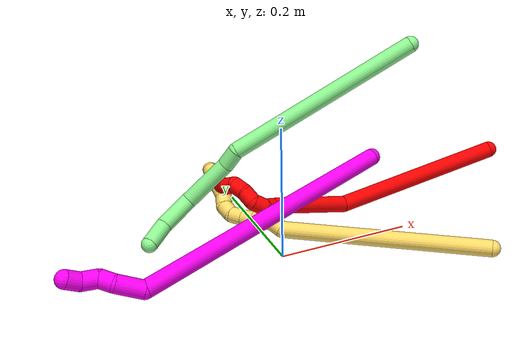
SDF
<sdf version="1.7">
 <world name="default">
  <model name="2">
   <static>0</static>
   <link name="2">
    <collision name="collision-cylinder-e_1_1_4">
     <pose>-0.026045 -0.007486 -0.121809 3.08021 -0.210261 -2.57535</pose>
     <geometry><cylinder><radius>0.0125</radius><length>0.249575</length></cylinder></geometry>
     <surface>
      <friction><ode><mu>1.16</mu><mu2>1.16</mu2><slip1>0</slip1><slip2>0</slip2></ode></friction>
      <contact><ode><kp>1e+06</kp><kd>1</kd><max_vel>0</max_vel><min_depth>0.001</min_depth></ode></contact>
     </surface>
    </collision>
    <visual name="visual-cylinder-e_1_1_4">
     <pose>-0.026045 -0.007486 -0.121809 3.08021 -0.210261 -2.57535</pose>
     <geometry><cylinder><radius>0.0125</radius><length>0.249575</length></cylinder></geometry>
     <material><ambient>1 0 0 1</ambient></material>
    </visual>
    <collision name="collision-cylinder-e_2_4_5">
     <pose>-0.085005 -0.037875 -0.280285 2.58327 -0.650732 -1.73296</pose>
     <geometry><cylinder><radius>0.0125</radius><length>0.108671</length></cylinder></geometry>
     <surface>
      <friction><ode><mu>1.16</mu><mu2>1.16</mu2><slip1>0</slip1><slip2>0</slip2></ode></friction>
      <contact><ode><kp>1e+06</kp><kd>1</kd><max_vel>0</max_vel><min_depth>0.001</min_depth></ode></contact>
     </surface>
    </collision>
    <visual name="visual-cylinder-e_2_4_5">
     <pose>-0.085005 -0.037875 -0.280285 2.58327 -0.650732 -1.73296</pose>
     <geometry><cylinder><radius>0.0125</radius><length>0.108671</length></cylinder></geometry>
     <material><ambient>1 0 0 1</ambient></material>
    </visual>
    <collision name="collision-cylinder-e_3_5_6">
     <pose>-0.123359 -0.062564 -0.325711 2.94032 -0.54662 -2.45011</pose>
     <geometry><cylinder><radius>0.0125</radius><length>0.020929</length></cylinder></geometry>
     <surface>
      <friction><ode><mu>1.16</mu><mu2>1.16</mu2><slip1>0</slip1><slip2>0</slip2></ode></friction>
      <contact><ode><kp>1e+06</kp><kd>1</kd><max_vel>0</max_vel><min_depth>0.001</min_depth></ode></contact>
     </surface>
    </collision>
    <visual name="visual-cylinder-e_3_5_6">
     <pose>-0.123359 -0.062564 -0.325711 2.94032 -0.54662 -2.45011</pose>
     <geometry><cylinder><radius>0.0125</radius><length>0.020929</length></cylinder></geometry>
     <material><ambient>1 0 0 1</ambient></material>
    </visual>
    <collision name="collision-cylinder-e_4_6_7">
     <pose>-0.134251 -0.071462 -0.339199 2.15768 -0.568302 -0.997955</pose>
     <geometry><cylinder><radius>0.0125</radius><length>0.020263</length></cylinder></geometry>
     <surface>
      <friction><ode><mu>1.16</mu><mu2>1.16</mu2><slip1>0</slip1><slip2>0</slip2></ode></friction>
      <contact><ode><kp>1e+06</kp><kd>1</kd><max_vel>0</max_vel><min_depth>0.001</min_depth></ode></contact>
     </surface>
    </collision>
    <visual name="visual-cylinder-e_4_6_7">
     <pose>-0.134251 -0.071462 -0.339199 2.15768 -0.568302 -0.997955</pose>
     <geometry><cylinder><radius>0.0125</radius><length>0.020263</length></cylinder></geometry>
     <material><ambient>1 0 0 1</ambient></material>
    </visual>
    <collision name="collision-cylinder-e_5_7_8">
     <pose>-0.148343 -0.079646 -0.349035 2.93428 -1.02732 -2.7769</pose>
     <geometry><cylinder><radius>0.0125</radius><length>0.020185</length></cylinder></geometry>
     <surface>
      <friction><ode><mu>1.16</mu><mu2>1.16</mu2><slip1>0</slip1><slip2>0</slip2></ode></friction>
      <contact><ode><kp>1e+06</kp><kd>1</kd><max_vel>0</max_vel><min_depth>0.001</min_depth></ode></contact>
     </surface>
    </collision>
    <visual name="visual-cylinder-e_5_7_8">
     <pose>-0.148343 -0.079646 -0.349035 2.93428 -1.02732 -2.7769</pose>
     <geometry><cylinder><radius>0.0125</radius><length>0.020185</length></cylinder></geometry>
     <material><ambient>1 0 0 1</ambient></material>
    </visual>
    <collision name="collision-cylinder-e_6_8_9">
     <pose>-0.165323 -0.075345 -0.356228 -1.94095 -0.965999 1.30736</pose>
     <geometry><cylinder><radius>0.0125</radius><length>0.020282</length></cylinder></geometry>
     <surface>
      <friction><ode><mu>1.16</mu><mu2>1.16</mu2><slip1>0</slip1><slip2>0</slip2></ode></friction>
      <contact><ode><kp>1e+06</kp><kd>1</kd><max_vel>0</max_vel><min_depth>0.001</min_depth></ode></contact>
     </surface>
    </collision>
    <visual name="visual-cylinder-e_6_8_9">
     <pose>-0.165323 -0.075345 -0.356228 -1.94095 -0.965999 1.30736</pose>
     <geometry><cylinder><radius>0.0125</radius><length>0.020282</length></cylinder></geometry>
     <material><ambient>1 0 0 1</ambient></material>
    </visual>
    <collision name="collision-cylinder-e_7_9_10">
     <pose>-0.179929 -0.063303 -0.3624 -2.12069 -0.675441 1.12029</pose>
     <geometry><cylinder><radius>0.0125</radius><length>0.020036</length></cylinder></geometry>
     <surface>
      <friction><ode><mu>1.16</mu><mu2>1.16</mu2><slip1>0</slip1><slip2>0</slip2></ode></friction>
      <contact><ode><kp>1e+06</kp><kd>1</kd><max_vel>0</max_vel><min_depth>0.001</min_depth></ode></contact>
     </surface>
    </collision>
    <visual name="visual-cylinder-e_7_9_10">
     <pose>-0.179929 -0.063303 -0.3624 -2.12069 -0.675441 1.12029</pose>
     <geometry><cylinder><radius>0.0125</radius><length>0.020036</length></cylinder></geometry>
     <material><ambient>1 0 0 1</ambient></material>
    </visual>
    <collision name="collision-cylinder-e_8_10_11">
     <pose>-0.186478 -0.049674 -0.373688 -2.37307 -0.028467 0.070377</pose>
     <geometry><cylinder><radius>0.0125</radius><length>0.020044</length></cylinder></geometry>
     <surface>
      <friction><ode><mu>1.16</mu><mu2>1.16</mu2><slip1>0</slip1><slip2>0</slip2></ode></friction>
      <contact><ode><kp>1e+06</kp><kd>1</kd><max_vel>0</max_vel><min_depth>0.001</min_depth></ode></contact>
     </surface>
    </collision>
    <visual name="visual-cylinder-e_8_10_11">
     <pose>-0.186478 -0.049674 -0.373688 -2.37307 -0.028467 0.070377</pose>
     <geometry><cylinder><radius>0.0125</radius><length>0.020044</length></cylinder></geometry>
     <material><ambient>1 0 0 1</ambient></material>
    </visual>
    <collision name="collision-cylinder-e_9_11_2">
     <pose>-0.185936 -0.033224 -0.383967 -1.8844 0.082737 -0.113752</pose>
     <geometry><cylinder><radius>0.0125</radius><length>0.020015</length></cylinder></geometry>
     <surface>
      <friction><ode><mu>1.16</mu><mu2>1.16</mu2><slip1>0</slip1><slip2>0</slip2></ode></friction>
      <contact><ode><kp>1e+06</kp><kd>1</kd><max_vel>0</max_vel><min_depth>0.001</min_depth></ode></contact>
     </surface>
    </collision>
    <visual name="visual-cylinder-e_9_11_2">
     <pose>-0.185936 -0.033224 -0.383967 -1.8844 0.082737 -0.113752</pose>
     <geometry><cylinder><radius>0.0125</radius><length>0.020015</length></cylinder></geometry>
     <material><ambient>1 0 0 1</ambient></material>
    </visual>
    <collision name="collision-sphere-2">
     <pose>-0.185109 -0.023738 -0.387044 0 -0 0</pose>
     <geometry><sphere><radius>0.0125</radius></sphere></geometry>
     <surface>
      <friction><ode><mu>1.16</mu><mu2>1.16</mu2><slip1>0</slip1><slip2>0</slip2></ode></friction>
      <contact><ode><kp>1e+06</kp><kd>1</kd><max_vel>0</max_vel><min_depth>0.001</min_depth></ode></contact>
     </surface>
    </collision>
    <visual name="visual-sphere-2">
     <pose>-0.185109 -0.023738 -0.387044 0 -0 0</pose>
     <geometry><sphere><radius>0.0125</radius></sphere></geometry>
     <material><ambient>1 0 0 1</ambient></material>
    </visual>
    <collision name="collision-sphere-11">
     <pose>-0.186763 -0.042711 -0.380891 0 -0 0</pose>
     <geometry><sphere><radius>0.0125</radius></sphere></geometry>
     <surface>
      <friction><ode><mu>1.16</mu><mu2>1.16</mu2><slip1>0</slip1><slip2>0</slip2></ode></friction>
      <contact><ode><kp>1e+06</kp><kd>1</kd><max_vel>0</max_vel><min_depth>0.001</min_depth></ode></contact>
     </surface>
    </collision>
    <visual name="visual-sphere-11">
     <pose>-0.186763 -0.042711 -0.380891 0 -0 0</pose>
     <geometry><sphere><radius>0.0125</radius></sphere></geometry>
     <material><ambient>1 0 0 1</ambient></material>
    </visual>
    <collision name="collision-sphere-10">
     <pose>-0.186193 -0.056638 -0.366486 0 -0 0</pose>
     <geometry><sphere><radius>0.0125</radius></sphere></geometry>
     <surface>
      <friction><ode><mu>1.16</mu><mu2>1.16</mu2><slip1>0</slip1><slip2>0</slip2></ode></friction>
      <contact><ode><kp>1e+06</kp><kd>1</kd><max_vel>0</max_vel><min_depth>0.001</min_depth></ode></contact>
     </surface>
    </collision>
    <visual name="visual-sphere-10">
     <pose>-0.186193 -0.056638 -0.366486 0 -0 0</pose>
     <geometry><sphere><radius>0.0125</radius></sphere></geometry>
     <material><ambient>1 0 0 1</ambient></material>
    </visual>
    <collision name="collision-sphere-9">
     <pose>-0.173666 -0.069969 -0.358314 0 -0 0</pose>
     <geometry><sphere><radius>0.0125</radius></sphere></geometry>
     <surface>
      <friction><ode><mu>1.16</mu><mu2>1.16</mu2><slip1>0</slip1><slip2>0</slip2></ode></friction>
      <contact><ode><kp>1e+06</kp><kd>1</kd><max_vel>0</max_vel><min_depth>0.001</min_depth></ode></contact>
     </surface>
    </collision>
    <visual name="visual-sphere-9">
     <pose>-0.173666 -0.069969 -0.358314 0 -0 0</pose>
     <geometry><sphere><radius>0.0125</radius></sphere></geometry>
     <material><ambient>1 0 0 1</ambient></material>
    </visual>
    <collision name="collision-sphere-4">
     <pose>-0.05209 -0.014972 -0.243619 0 -0 0</pose>
     <geometry><sphere><radius>0.0125</radius></sphere></geometry>
     <surface>
      <friction><ode><mu>1.16</mu><mu2>1.16</mu2><slip1>0</slip1><slip2>0</slip2></ode></friction>
      <contact><ode><kp>1e+06</kp><kd>1</kd><max_vel>0</max_vel><min_depth>0.001</min_depth></ode></contact>
     </surface>
    </collision>
    <visual name="visual-sphere-4">
     <pose>-0.05209 -0.014972 -0.243619 0 -0 0</pose>
     <geometry><sphere><radius>0.0125</radius></sphere></geometry>
     <material><ambient>1 0 0 1</ambient></material>
    </visual>
    <collision name="collision-sphere-1">
     <geometry><sphere><radius>0.0125</radius></sphere></geometry>
     <surface>
      <friction><ode><mu>1.16</mu><mu2>1.16</mu2><slip1>0</slip1><slip2>0</slip2></ode></friction>
      <contact><ode><kp>1e+06</kp><kd>1</kd><max_vel>0</max_vel><min_depth>0.001</min_depth></ode></contact>
     </surface>
    </collision>
    <visual name="visual-sphere-1">
     <geometry><sphere><radius>0.0125</radius></sphere></geometry>
     <material><ambient>1 0 0 1</ambient></material>
    </visual>
    <collision name="collision-sphere-8">
     <pose>-0.156981 -0.08072 -0.354142 0 -0 0</pose>
     <geometry><sphere><radius>0.0125</radius></sphere></geometry>
     <surface>
      <friction><ode><mu>1.16</mu><mu2>1.16</mu2><slip1>0</slip1><slip2>0</slip2></ode></friction>
      <contact><ode><kp>1e+06</kp><kd>1</kd><max_vel>0</max_vel><min_depth>0.001</min_depth></ode></contact>
     </surface>
    </collision>
    <visual name="visual-sphere-8">
     <pose>-0.156981 -0.08072 -0.354142 0 -0 0</pose>
     <geometry><sphere><radius>0.0125</radius></sphere></geometry>
     <material><ambient>1 0 0 1</ambient></material>
    </visual>
    <collision name="collision-sphere-5">
     <pose>-0.11792 -0.060777 -0.316952 0 -0 0</pose>
     <geometry><sphere><radius>0.0125</radius></sphere></geometry>
     <surface>
      <friction><ode><mu>1.16</mu><mu2>1.16</mu2><slip1>0</slip1><slip2>0</slip2></ode></friction>
      <contact><ode><kp>1e+06</kp><kd>1</kd><max_vel>0</max_vel><min_depth>0.001</min_depth></ode></contact>
     </surface>
    </collision>
    <visual name="visual-sphere-5">
     <pose>-0.11792 -0.060777 -0.316952 0 -0 0</pose>
     <geometry><sphere><radius>0.0125</radius></sphere></geometry>
     <material><ambient>1 0 0 1</ambient></material>
    </visual>
    <collision name="collision-sphere-6">
     <pose>-0.128798 -0.064351 -0.33447 0 -0 0</pose>
     <geometry><sphere><radius>0.0125</radius></sphere></geometry>
     <surface>
      <friction><ode><mu>1.16</mu><mu2>1.16</mu2><slip1>0</slip1><slip2>0</slip2></ode></friction>
      <contact><ode><kp>1e+06</kp><kd>1</kd><max_vel>0</max_vel><min_depth>0.001</min_depth></ode></contact>
     </surface>
    </collision>
    <visual name="visual-sphere-6">
     <pose>-0.128798 -0.064351 -0.33447 0 -0 0</pose>
     <geometry><sphere><radius>0.0125</radius></sphere></geometry>
     <material><ambient>1 0 0 1</ambient></material>
    </visual>
    <collision name="collision-sphere-7">
     <pose>-0.139704 -0.078572 -0.343928 0 -0 0</pose>
     <geometry><sphere><radius>0.0125</radius></sphere></geometry>
     <surface>
      <friction><ode><mu>1.16</mu><mu2>1.16</mu2><slip1>0</slip1><slip2>0</slip2></ode></friction>
      <contact><ode><kp>1e+06</kp><kd>1</kd><max_vel>0</max_vel><min_depth>0.001</min_depth></ode></contact>
     </surface>
    </collision>
    <visual name="visual-sphere-7">
     <pose>-0.139704 -0.078572 -0.343928 0 -0 0</pose>
     <geometry><sphere><radius>0.0125</radius></sphere></geometry>
     <material><ambient>1 0 0 1</ambient></material>
    </visual>
    <inertial>
     <pose>-0.076903 -0.029613 -0.222512 0 -0 0</pose>
     <mass>0.5</mass>
     <inertia>
      <ixx>-0.001876</ixx>
      <ixy>0</ixy>
      <ixz>0</ixz>
      <iyy>0.000387</iyy>
      <iyz>0</iyz>
      <izz>0.000437</izz>
     </inertia>
    </inertial>
   </link>
   <pose>0.377687 0.034462 0.079609 -0.258411 1.05871 -0.529895</pose>
  </model>
  <model name="5">
   <static>0</static>
   <link name="5">
    <collision name="collision-cylinder-e_1_1_4">
     <pose>-0.016455 0.01173 0.152508 -0.076764 -0.107166 0.004119</pose>
     <geometry><cylinder><radius>0.0125</radius><length>0.307683</length></cylinder></geometry>
     <surface>
      <friction><ode><mu>1.16</mu><mu2>1.16</mu2><slip1>0</slip1><slip2>0</slip2></ode></friction>
      <contact><ode><kp>1e+06</kp><kd>1</kd><max_vel>0</max_vel><min_depth>0.001</min_depth></ode></contact>
     </surface>
    </collision>
    <visual name="visual-cylinder-e_1_1_4">
     <pose>-0.016455 0.01173 0.152508 -0.076764 -0.107166 0.004119</pose>
     <geometry><cylinder><radius>0.0125</radius><length>0.307683</length></cylinder></geometry>
     <material><ambient>1 0.858824 0.4 1</ambient></material>
    </visual>
    <collision name="collision-cylinder-e_2_4_5">
     <pose>-0.036076 0.019205 0.313904 0.446521 -0.310874 -0.071127</pose>
     <geometry><cylinder><radius>0.0125</radius><length>0.020699</length></cylinder></geometry>
     <surface>
      <friction><ode><mu>1.16</mu><mu2>1.16</mu2><slip1>0</slip1><slip2>0</slip2></ode></friction>
      <contact><ode><kp>1e+06</kp><kd>1</kd><max_vel>0</max_vel><min_depth>0.001</min_depth></ode></contact>
     </surface>
    </collision>
    <visual name="visual-cylinder-e_2_4_5">
     <pose>-0.036076 0.019205 0.313904 0.446521 -0.310874 -0.071127</pose>
     <geometry><cylinder><radius>0.0125</radius><length>0.020699</length></cylinder></geometry>
     <material><ambient>1 0.858824 0.4 1</ambient></material>
    </visual>
    <collision name="collision-cylinder-e_3_5_6">
     <pose>-0.037528 0.012073 0.337778 0.189706 0.111861 0.010653</pose>
     <geometry><cylinder><radius>0.0125</radius><length>0.030713</length></cylinder></geometry>
     <surface>
      <friction><ode><mu>1.16</mu><mu2>1.16</mu2><slip1>0</slip1><slip2>0</slip2></ode></friction>
      <contact><ode><kp>1e+06</kp><kd>1</kd><max_vel>0</max_vel><min_depth>0.001</min_depth></ode></contact>
     </surface>
    </collision>
    <visual name="visual-cylinder-e_3_5_6">
     <pose>-0.037528 0.012073 0.337778 0.189706 0.111861 0.010653</pose>
     <geometry><cylinder><radius>0.0125</radius><length>0.030713</length></cylinder></geometry>
     <material><ambient>1 0.858824 0.4 1</ambient></material>
    </visual>
    <collision name="collision-cylinder-e_4_6_7">
     <pose>-0.034933 0.007065 0.362848 0.208146 0.08523 0.008908</pose>
     <geometry><cylinder><radius>0.0125</radius><length>0.020686</length></cylinder></geometry>
     <surface>
      <friction><ode><mu>1.16</mu><mu2>1.16</mu2><slip1>0</slip1><slip2>0</slip2></ode></friction>
      <contact><ode><kp>1e+06</kp><kd>1</kd><max_vel>0</max_vel><min_depth>0.001</min_depth></ode></contact>
     </surface>
    </collision>
    <visual name="visual-cylinder-e_4_6_7">
     <pose>-0.034933 0.007065 0.362848 0.208146 0.08523 0.008908</pose>
     <geometry><cylinder><radius>0.0125</radius><length>0.020686</length></cylinder></geometry>
     <material><ambient>1 0.858824 0.4 1</ambient></material>
    </visual>
    <collision name="collision-cylinder-e_5_7_8">
     <pose>-0.035131 0.003168 0.382817 0.176962 -0.106947 -0.009497</pose>
     <geometry><cylinder><radius>0.0125</radius><length>0.020202</length></cylinder></geometry>
     <surface>
      <friction><ode><mu>1.16</mu><mu2>1.16</mu2><slip1>0</slip1><slip2>0</slip2></ode></friction>
      <contact><ode><kp>1e+06</kp><kd>1</kd><max_vel>0</max_vel><min_depth>0.001</min_depth></ode></contact>
     </surface>
    </collision>
    <visual name="visual-cylinder-e_5_7_8">
     <pose>-0.035131 0.003168 0.382817 0.176962 -0.106947 -0.009497</pose>
     <geometry><cylinder><radius>0.0125</radius><length>0.020202</length></cylinder></geometry>
     <material><ambient>1 0.858824 0.4 1</ambient></material>
    </visual>
    <collision name="collision-cylinder-e_6_8_9">
     <pose>-0.038692 -0.004629 0.400287 0.671648 -0.250861 -0.087967</pose>
     <geometry><cylinder><radius>0.0125</radius><length>0.020002</length></cylinder></geometry>
     <surface>
      <friction><ode><mu>1.16</mu><mu2>1.16</mu2><slip1>0</slip1><slip2>0</slip2></ode></friction>
      <contact><ode><kp>1e+06</kp><kd>1</kd><max_vel>0</max_vel><min_depth>0.001</min_depth></ode></contact>
     </surface>
    </collision>
    <visual name="visual-cylinder-e_6_8_9">
     <pose>-0.038692 -0.004629 0.400287 0.671648 -0.250861 -0.087967</pose>
     <geometry><cylinder><radius>0.0125</radius><length>0.020002</length></cylinder></geometry>
     <material><ambient>1 0.858824 0.4 1</ambient></material>
    </visual>
    <collision name="collision-cylinder-e_7_9_10">
     <pose>-0.043499 -0.019924 0.410852 1.25959 -0.234408 -0.171204</pose>
     <geometry><cylinder><radius>0.0125</radius><length>0.020015</length></cylinder></geometry>
     <surface>
      <friction><ode><mu>1.16</mu><mu2>1.16</mu2><slip1>0</slip1><slip2>0</slip2></ode></friction>
      <contact><ode><kp>1e+06</kp><kd>1</kd><max_vel>0</max_vel><min_depth>0.001</min_depth></ode></contact>
     </surface>
    </collision>
    <visual name="visual-cylinder-e_7_9_10">
     <pose>-0.043499 -0.019924 0.410852 1.25959 -0.234408 -0.171204</pose>
     <geometry><cylinder><radius>0.0125</radius><length>0.020015</length></cylinder></geometry>
     <material><ambient>1 0.858824 0.4 1</ambient></material>
    </visual>
    <collision name="collision-cylinder-e_8_10_11">
     <pose>-0.051176 -0.035458 0.419494 0.836224 -0.564894 -0.256467</pose>
     <geometry><cylinder><radius>0.0125</radius><length>0.02</length></cylinder></geometry>
     <surface>
      <friction><ode><mu>1.16</mu><mu2>1.16</mu2><slip1>0</slip1><slip2>0</slip2></ode></friction>
      <contact><ode><kp>1e+06</kp><kd>1</kd><max_vel>0</max_vel><min_depth>0.001</min_depth></ode></contact>
     </surface>
    </collision>
    <visual name="visual-cylinder-e_8_10_11">
     <pose>-0.051176 -0.035458 0.419494 0.836224 -0.564894 -0.256467</pose>
     <geometry><cylinder><radius>0.0125</radius><length>0.02</length></cylinder></geometry>
     <material><ambient>1 0.858824 0.4 1</ambient></material>
    </visual>
    <collision name="collision-cylinder-e_9_11_12">
     <pose>-0.058194 -0.049518 0.431199 0.91098 -0.167179 -0.082037</pose>
     <geometry><cylinder><radius>0.0125</radius><length>0.02</length></cylinder></geometry>
     <surface>
      <friction><ode><mu>1.16</mu><mu2>1.16</mu2><slip1>0</slip1><slip2>0</slip2></ode></friction>
      <contact><ode><kp>1e+06</kp><kd>1</kd><max_vel>0</max_vel><min_depth>0.001</min_depth></ode></contact>
     </surface>
    </collision>
    <visual name="visual-cylinder-e_9_11_12">
     <pose>-0.058194 -0.049518 0.431199 0.91098 -0.167179 -0.082037</pose>
     <geometry><cylinder><radius>0.0125</radius><length>0.02</length></cylinder></geometry>
     <material><ambient>1 0.858824 0.4 1</ambient></material>
    </visual>
    <collision name="collision-cylinder-e_10_12_2">
     <pose>-0.059823 -0.065603 0.442829 0.978203 0.003497 0.001861</pose>
     <geometry><cylinder><radius>0.0125</radius><length>0.02</length></cylinder></geometry>
     <surface>
      <friction><ode><mu>1.16</mu><mu2>1.16</mu2><slip1>0</slip1><slip2>0</slip2></ode></friction>
      <contact><ode><kp>1e+06</kp><kd>1</kd><max_vel>0</max_vel><min_depth>0.001</min_depth></ode></contact>
     </surface>
    </collision>
    <visual name="visual-cylinder-e_10_12_2">
     <pose>-0.059823 -0.065603 0.442829 0.978203 0.003497 0.001861</pose>
     <geometry><cylinder><radius>0.0125</radius><length>0.02</length></cylinder></geometry>
     <material><ambient>1 0.858824 0.4 1</ambient></material>
    </visual>
    <collision name="collision-sphere-2">
     <pose>-0.059788 -0.073898 0.448414 0 -0 0</pose>
     <geometry><sphere><radius>0.0125</radius></sphere></geometry>
     <surface>
      <friction><ode><mu>1.16</mu><mu2>1.16</mu2><slip1>0</slip1><slip2>0</slip2></ode></friction>
      <contact><ode><kp>1e+06</kp><kd>1</kd><max_vel>0</max_vel><min_depth>0.001</min_depth></ode></contact>
     </surface>
    </collision>
    <visual name="visual-sphere-2">
     <pose>-0.059788 -0.073898 0.448414 0 -0 0</pose>
     <geometry><sphere><radius>0.0125</radius></sphere></geometry>
     <material><ambient>1 0.858824 0.4 1</ambient></material>
    </visual>
    <collision name="collision-sphere-12">
     <pose>-0.059858 -0.057308 0.437244 0 -0 0</pose>
     <geometry><sphere><radius>0.0125</radius></sphere></geometry>
     <surface>
      <friction><ode><mu>1.16</mu><mu2>1.16</mu2><slip1>0</slip1><slip2>0</slip2></ode></friction>
      <contact><ode><kp>1e+06</kp><kd>1</kd><max_vel>0</max_vel><min_depth>0.001</min_depth></ode></contact>
     </surface>
    </collision>
    <visual name="visual-sphere-12">
     <pose>-0.059858 -0.057308 0.437244 0 -0 0</pose>
     <geometry><sphere><radius>0.0125</radius></sphere></geometry>
     <material><ambient>1 0.858824 0.4 1</ambient></material>
    </visual>
    <collision name="collision-sphere-11">
     <pose>-0.05653 -0.041727 0.425155 0 -0 0</pose>
     <geometry><sphere><radius>0.0125</radius></sphere></geometry>
     <surface>
      <friction><ode><mu>1.16</mu><mu2>1.16</mu2><slip1>0</slip1><slip2>0</slip2></ode></friction>
      <contact><ode><kp>1e+06</kp><kd>1</kd><max_vel>0</max_vel><min_depth>0.001</min_depth></ode></contact>
     </surface>
    </collision>
    <visual name="visual-sphere-11">
     <pose>-0.05653 -0.041727 0.425155 0 -0 0</pose>
     <geometry><sphere><radius>0.0125</radius></sphere></geometry>
     <material><ambient>1 0.858824 0.4 1</ambient></material>
    </visual>
    <collision name="collision-sphere-10">
     <pose>-0.045823 -0.02919 0.413832 0 -0 0</pose>
     <geometry><sphere><radius>0.0125</radius></sphere></geometry>
     <surface>
      <friction><ode><mu>1.16</mu><mu2>1.16</mu2><slip1>0</slip1><slip2>0</slip2></ode></friction>
      <contact><ode><kp>1e+06</kp><kd>1</kd><max_vel>0</max_vel><min_depth>0.001</min_depth></ode></contact>
     </surface>
    </collision>
    <visual name="visual-sphere-10">
     <pose>-0.045823 -0.02919 0.413832 0 -0 0</pose>
     <geometry><sphere><radius>0.0125</radius></sphere></geometry>
     <material><ambient>1 0.858824 0.4 1</ambient></material>
    </visual>
    <collision name="collision-sphere-9">
     <pose>-0.041174 -0.010657 0.407871 0 -0 0</pose>
     <geometry><sphere><radius>0.0125</radius></sphere></geometry>
     <surface>
      <friction><ode><mu>1.16</mu><mu2>1.16</mu2><slip1>0</slip1><slip2>0</slip2></ode></friction>
      <contact><ode><kp>1e+06</kp><kd>1</kd><max_vel>0</max_vel><min_depth>0.001</min_depth></ode></contact>
     </surface>
    </collision>
    <visual name="visual-sphere-9">
     <pose>-0.041174 -0.010657 0.407871 0 -0 0</pose>
     <geometry><sphere><radius>0.0125</radius></sphere></geometry>
     <material><ambient>1 0.858824 0.4 1</ambient></material>
    </visual>
    <collision name="collision-sphere-4">
     <pose>-0.03291 0.02346 0.305017 0 -0 0</pose>
     <geometry><sphere><radius>0.0125</radius></sphere></geometry>
     <surface>
      <friction><ode><mu>1.16</mu><mu2>1.16</mu2><slip1>0</slip1><slip2>0</slip2></ode></friction>
      <contact><ode><kp>1e+06</kp><kd>1</kd><max_vel>0</max_vel><min_depth>0.001</min_depth></ode></contact>
     </surface>
    </collision>
    <visual name="visual-sphere-4">
     <pose>-0.03291 0.02346 0.305017 0 -0 0</pose>
     <geometry><sphere><radius>0.0125</radius></sphere></geometry>
     <material><ambient>1 0.858824 0.4 1</ambient></material>
    </visual>
    <collision name="collision-sphere-1">
     <geometry><sphere><radius>0.0125</radius></sphere></geometry>
     <surface>
      <friction><ode><mu>1.16</mu><mu2>1.16</mu2><slip1>0</slip1><slip2>0</slip2></ode></friction>
      <contact><ode><kp>1e+06</kp><kd>1</kd><max_vel>0</max_vel><min_depth>0.001</min_depth></ode></contact>
     </surface>
    </collision>
    <visual name="visual-sphere-1">
     <geometry><sphere><radius>0.0125</radius></sphere></geometry>
     <material><ambient>1 0.858824 0.4 1</ambient></material>
    </visual>
    <collision name="collision-sphere-8">
     <pose>-0.036209 0.0014 0.392704 0 -0 0</pose>
     <geometry><sphere><radius>0.0125</radius></sphere></geometry>
     <surface>
      <friction><ode><mu>1.16</mu><mu2>1.16</mu2><slip1>0</slip1><slip2>0</slip2></ode></friction>
      <contact><ode><kp>1e+06</kp><kd>1</kd><max_vel>0</max_vel><min_depth>0.001</min_depth></ode></contact>
     </surface>
    </collision>
    <visual name="visual-sphere-8">
     <pose>-0.036209 0.0014 0.392704 0 -0 0</pose>
     <geometry><sphere><radius>0.0125</radius></sphere></geometry>
     <material><ambient>1 0.858824 0.4 1</ambient></material>
    </visual>
    <collision name="collision-sphere-5">
     <pose>-0.039242 0.01495 0.322792 0 -0 0</pose>
     <geometry><sphere><radius>0.0125</radius></sphere></geometry>
     <surface>
      <friction><ode><mu>1.16</mu><mu2>1.16</mu2><slip1>0</slip1><slip2>0</slip2></ode></friction>
      <contact><ode><kp>1e+06</kp><kd>1</kd><max_vel>0</max_vel><min_depth>0.001</min_depth></ode></contact>
     </surface>
    </collision>
    <visual name="visual-sphere-5">
     <pose>-0.039242 0.01495 0.322792 0 -0 0</pose>
     <geometry><sphere><radius>0.0125</radius></sphere></geometry>
     <material><ambient>1 0.858824 0.4 1</ambient></material>
    </visual>
    <collision name="collision-sphere-6">
     <pose>-0.035813 0.009195 0.352765 0 -0 0</pose>
     <geometry><sphere><radius>0.0125</radius></sphere></geometry>
     <surface>
      <friction><ode><mu>1.16</mu><mu2>1.16</mu2><slip1>0</slip1><slip2>0</slip2></ode></friction>
      <contact><ode><kp>1e+06</kp><kd>1</kd><max_vel>0</max_vel><min_depth>0.001</min_depth></ode></contact>
     </surface>
    </collision>
    <visual name="visual-sphere-6">
     <pose>-0.035813 0.009195 0.352765 0 -0 0</pose>
     <geometry><sphere><radius>0.0125</radius></sphere></geometry>
     <material><ambient>1 0.858824 0.4 1</ambient></material>
    </visual>
    <collision name="collision-sphere-7">
     <pose>-0.034053 0.004936 0.372931 0 -0 0</pose>
     <geometry><sphere><radius>0.0125</radius></sphere></geometry>
     <surface>
      <friction><ode><mu>1.16</mu><mu2>1.16</mu2><slip1>0</slip1><slip2>0</slip2></ode></friction>
      <contact><ode><kp>1e+06</kp><kd>1</kd><max_vel>0</max_vel><min_depth>0.001</min_depth></ode></contact>
     </surface>
    </collision>
    <visual name="visual-sphere-7">
     <pose>-0.034053 0.004936 0.372931 0 -0 0</pose>
     <geometry><sphere><radius>0.0125</radius></sphere></geometry>
     <material><ambient>1 0.858824 0.4 1</ambient></material>
    </visual>
    <inertial>
     <pose>-0.026846 0.002169 0.242271 0 -0 0</pose>
     <mass>0.5</mass>
     <inertia>
      <ixx>0.002445</ixx>
      <ixy>0</ixy>
      <ixz>0</ixz>
      <iyy>0.002448</iyy>
      <iyz>0</iyz>
      <izz>0.000119</izz>
     </inertia>
    </inertial>
   </link>
   <pose>0.272287 -0.127047 0.011496 -1.90217 1.30686 0.525273</pose>
  </model>
  <model name="10">
   <static>0</static>
   <link name="10">
    <collision name="collision-cylinder-e_1_1_4">
     <pose>-0.184373 -0.03936 -0.063543 2.58702 -1.18564 -2.34208</pose>
     <geometry><cylinder><radius>0.0125</radius><length>0.397896</length></cylinder></geometry>
     <surface>
      <friction><ode><mu>1.16</mu><mu2>1.16</mu2><slip1>0</slip1><slip2>0</slip2></ode></friction>
      <contact><ode><kp>1e+06</kp><kd>1</kd><max_vel>0</max_vel><min_depth>0.001</min_depth></ode></contact>
     </surface>
    </collision>
    <visual name="visual-cylinder-e_1_1_4">
     <pose>-0.184373 -0.03936 -0.063543 2.58702 -1.18564 -2.34208</pose>
     <geometry><cylinder><radius>0.0125</radius><length>0.397896</length></cylinder></geometry>
     <material><ambient>1 0 0.964706 1</ambient></material>
    </visual>
    <collision name="collision-cylinder-e_2_4_5">
     <pose>-0.38691 -0.07378 -0.122409 -0.812744 -1.21248 0.5799</pose>
     <geometry><cylinder><radius>0.0125</radius><length>0.038791</length></cylinder></geometry>
     <surface>
      <friction><ode><mu>1.16</mu><mu2>1.16</mu2><slip1>0</slip1><slip2>0</slip2></ode></friction>
      <contact><ode><kp>1e+06</kp><kd>1</kd><max_vel>0</max_vel><min_depth>0.001</min_depth></ode></contact>
     </surface>
    </collision>
    <visual name="visual-cylinder-e_2_4_5">
     <pose>-0.38691 -0.07378 -0.122409 -0.812744 -1.21248 0.5799</pose>
     <geometry><cylinder><radius>0.0125</radius><length>0.038791</length></cylinder></geometry>
     <material><ambient>1 0 0.964706 1</ambient></material>
    </visual>
    <collision name="collision-cylinder-e_3_5_6">
     <pose>-0.412869 -0.062781 -0.116002 -1.29258 -0.890983 0.691493</pose>
     <geometry><cylinder><radius>0.0125</radius><length>0.020048</length></cylinder></geometry>
     <surface>
      <friction><ode><mu>1.16</mu><mu2>1.16</mu2><slip1>0</slip1><slip2>0</slip2></ode></friction>
      <contact><ode><kp>1e+06</kp><kd>1</kd><max_vel>0</max_vel><min_depth>0.001</min_depth></ode></contact>
     </surface>
    </collision>
    <visual name="visual-cylinder-e_3_5_6">
     <pose>-0.412869 -0.062781 -0.116002 -1.29258 -0.890983 0.691493</pose>
     <geometry><cylinder><radius>0.0125</radius><length>0.020048</length></cylinder></geometry>
     <material><ambient>1 0 0.964706 1</ambient></material>
    </visual>
    <collision name="collision-cylinder-e_4_6_7">
     <pose>-0.431982 -0.055459 -0.115439 -2.31665 -1.41996 2.19978</pose>
     <geometry><cylinder><radius>0.0125</radius><length>0.022895</length></cylinder></geometry>
     <surface>
      <friction><ode><mu>1.16</mu><mu2>1.16</mu2><slip1>0</slip1><slip2>0</slip2></ode></friction>
      <contact><ode><kp>1e+06</kp><kd>1</kd><max_vel>0</max_vel><min_depth>0.001</min_depth></ode></contact>
     </surface>
    </collision>
    <visual name="visual-cylinder-e_4_6_7">
     <pose>-0.431982 -0.055459 -0.115439 -2.31665 -1.41996 2.19978</pose>
     <geometry><cylinder><radius>0.0125</radius><length>0.022895</length></cylinder></geometry>
     <material><ambient>1 0 0.964706 1</ambient></material>
    </visual>
    <collision name="collision-cylinder-e_5_7_2">
     <pose>-0.453019 -0.054435 -0.11357 0.078718 -1.26716 -0.057841</pose>
     <geometry><cylinder><radius>0.0125</radius><length>0.02037</length></cylinder></geometry>
     <surface>
      <friction><ode><mu>1.16</mu><mu2>1.16</mu2><slip1>0</slip1><slip2>0</slip2></ode></friction>
      <contact><ode><kp>1e+06</kp><kd>1</kd><max_vel>0</max_vel><min_depth>0.001</min_depth></ode></contact>
     </surface>
    </collision>
    <visual name="visual-cylinder-e_5_7_2">
     <pose>-0.453019 -0.054435 -0.11357 0.078718 -1.26716 -0.057841</pose>
     <geometry><cylinder><radius>0.0125</radius><length>0.02037</length></cylinder></geometry>
     <material><ambient>1 0 0.964706 1</ambient></material>
    </visual>
    <collision name="collision-sphere-2">
     <pose>-0.462738 -0.054674 -0.110534 0 -0 0</pose>
     <geometry><sphere><radius>0.0125</radius></sphere></geometry>
     <surface>
      <friction><ode><mu>1.16</mu><mu2>1.16</mu2><slip1>0</slip1><slip2>0</slip2></ode></friction>
      <contact><ode><kp>1e+06</kp><kd>1</kd><max_vel>0</max_vel><min_depth>0.001</min_depth></ode></contact>
     </surface>
    </collision>
    <visual name="visual-sphere-2">
     <pose>-0.462738 -0.054674 -0.110534 0 -0 0</pose>
     <geometry><sphere><radius>0.0125</radius></sphere></geometry>
     <material><ambient>1 0 0.964706 1</ambient></material>
    </visual>
    <collision name="collision-sphere-7">
     <pose>-0.443299 -0.054195 -0.116606 0 -0 0</pose>
     <geometry><sphere><radius>0.0125</radius></sphere></geometry>
     <surface>
      <friction><ode><mu>1.16</mu><mu2>1.16</mu2><slip1>0</slip1><slip2>0</slip2></ode></friction>
      <contact><ode><kp>1e+06</kp><kd>1</kd><max_vel>0</max_vel><min_depth>0.001</min_depth></ode></contact>
     </surface>
    </collision>
    <visual name="visual-sphere-7">
     <pose>-0.443299 -0.054195 -0.116606 0 -0 0</pose>
     <geometry><sphere><radius>0.0125</radius></sphere></geometry>
     <material><ambient>1 0 0.964706 1</ambient></material>
    </visual>
    <collision name="collision-sphere-6">
     <pose>-0.420664 -0.056722 -0.114272 0 -0 0</pose>
     <geometry><sphere><radius>0.0125</radius></sphere></geometry>
     <surface>
      <friction><ode><mu>1.16</mu><mu2>1.16</mu2><slip1>0</slip1><slip2>0</slip2></ode></friction>
      <contact><ode><kp>1e+06</kp><kd>1</kd><max_vel>0</max_vel><min_depth>0.001</min_depth></ode></contact>
     </surface>
    </collision>
    <visual name="visual-sphere-6">
     <pose>-0.420664 -0.056722 -0.114272 0 -0 0</pose>
     <geometry><sphere><radius>0.0125</radius></sphere></geometry>
     <material><ambient>1 0 0.964706 1</ambient></material>
    </visual>
    <collision name="collision-sphere-5">
     <pose>-0.405073 -0.06884 -0.117733 0 -0 0</pose>
     <geometry><sphere><radius>0.0125</radius></sphere></geometry>
     <surface>
      <friction><ode><mu>1.16</mu><mu2>1.16</mu2><slip1>0</slip1><slip2>0</slip2></ode></friction>
      <contact><ode><kp>1e+06</kp><kd>1</kd><max_vel>0</max_vel><min_depth>0.001</min_depth></ode></contact>
     </surface>
    </collision>
    <visual name="visual-sphere-5">
     <pose>-0.405073 -0.06884 -0.117733 0 -0 0</pose>
     <geometry><sphere><radius>0.0125</radius></sphere></geometry>
     <material><ambient>1 0 0.964706 1</ambient></material>
    </visual>
    <collision name="collision-sphere-1">
     <geometry><sphere><radius>0.0125</radius></sphere></geometry>
     <surface>
      <friction><ode><mu>1.16</mu><mu2>1.16</mu2><slip1>0</slip1><slip2>0</slip2></ode></friction>
      <contact><ode><kp>1e+06</kp><kd>1</kd><max_vel>0</max_vel><min_depth>0.001</min_depth></ode></contact>
     </surface>
    </collision>
    <visual name="visual-sphere-1">
     <geometry><sphere><radius>0.0125</radius></sphere></geometry>
     <material><ambient>1 0 0.964706 1</ambient></material>
    </visual>
    <collision name="collision-sphere-4">
     <pose>-0.368746 -0.07872 -0.127086 0 -0 0</pose>
     <geometry><sphere><radius>0.0125</radius></sphere></geometry>
     <surface>
      <friction><ode><mu>1.16</mu><mu2>1.16</mu2><slip1>0</slip1><slip2>0</slip2></ode></friction>
      <contact><ode><kp>1e+06</kp><kd>1</kd><max_vel>0</max_vel><min_depth>0.001</min_depth></ode></contact>
     </surface>
    </collision>
    <visual name="visual-sphere-4">
     <pose>-0.368746 -0.07872 -0.127086 0 -0 0</pose>
     <geometry><sphere><radius>0.0125</radius></sphere></geometry>
     <material><ambient>1 0 0.964706 1</ambient></material>
    </visual>
    <inertial>
     <pose>-0.231531 -0.044321 -0.074628 0 -0 0</pose>
     <mass>0.5</mass>
     <inertia>
      <ixx>-0.002829</ixx>
      <ixy>0</ixy>
      <ixz>0</ixz>
      <iyy>0.003552</iyy>
      <iyz>0</iyz>
      <izz>0.00592</izz>
     </inertia>
    </inertial>
   </link>
   <pose>0.160086 0.031768 0.112091 -0.102763 0.149026 0.025476</pose>
  </model>
  <model name="13">
   <static>0</static>
   <link name="13">
    <collision name="collision-cylinder-e_1_1_4">
     <pose>-0.144936 -0.001012 0.04175 0.024228 -1.29025 -0.018233</pose>
     <geometry><cylinder><radius>0.0125</radius><length>0.301666</length></cylinder></geometry>
     <surface>
      <friction><ode><mu>1.16</mu><mu2>1.16</mu2><slip1>0</slip1><slip2>0</slip2></ode></friction>
      <contact><ode><kp>1e+06</kp><kd>1</kd><max_vel>0</max_vel><min_depth>0.001</min_depth></ode></contact>
     </surface>
    </collision>
    <visual name="visual-cylinder-e_1_1_4">
     <pose>-0.144936 -0.001012 0.04175 0.024228 -1.29025 -0.018233</pose>
     <geometry><cylinder><radius>0.0125</radius><length>0.301666</length></cylinder></geometry>
     <material><ambient>0.564706 0.984314 0.572549 1</ambient></material>
    </visual>
    <collision name="collision-cylinder-e_2_4_5">
     <pose>-0.300218 0.001389 0.092944 -0.346777 -0.800317 0.147897</pose>
     <geometry><cylinder><radius>0.0125</radius><length>0.028834</length></cylinder></geometry>
     <surface>
      <friction><ode><mu>1.16</mu><mu2>1.16</mu2><slip1>0</slip1><slip2>0</slip2></ode></friction>
      <contact><ode><kp>1e+06</kp><kd>1</kd><max_vel>0</max_vel><min_depth>0.001</min_depth></ode></contact>
     </surface>
    </collision>
    <visual name="visual-cylinder-e_2_4_5">
     <pose>-0.300218 0.001389 0.092944 -0.346777 -0.800317 0.147897</pose>
     <geometry><cylinder><radius>0.0125</radius><length>0.028834</length></cylinder></geometry>
     <material><ambient>0.564706 0.984314 0.572549 1</ambient></material>
    </visual>
    <collision name="collision-cylinder-e_3_5_6">
     <pose>-0.344493 0.011102 0.120052 -0.342554 -1.06583 0.203348</pose>
     <geometry><cylinder><radius>0.0125</radius><length>0.077536</length></cylinder></geometry>
     <surface>
      <friction><ode><mu>1.16</mu><mu2>1.16</mu2><slip1>0</slip1><slip2>0</slip2></ode></friction>
      <contact><ode><kp>1e+06</kp><kd>1</kd><max_vel>0</max_vel><min_depth>0.001</min_depth></ode></contact>
     </surface>
    </collision>
    <visual name="visual-cylinder-e_3_5_6">
     <pose>-0.344493 0.011102 0.120052 -0.342554 -1.06583 0.203348</pose>
     <geometry><cylinder><radius>0.0125</radius><length>0.077536</length></cylinder></geometry>
     <material><ambient>0.564706 0.984314 0.572549 1</ambient></material>
    </visual>
    <collision name="collision-cylinder-e_4_6_7">
     <pose>-0.403675 0.025225 0.137063 -1.65431 -1.26937 1.35013</pose>
     <geometry><cylinder><radius>0.0125</radius><length>0.052891</length></cylinder></geometry>
     <surface>
      <friction><ode><mu>1.16</mu><mu2>1.16</mu2><slip1>0</slip1><slip2>0</slip2></ode></friction>
      <contact><ode><kp>1e+06</kp><kd>1</kd><max_vel>0</max_vel><min_depth>0.001</min_depth></ode></contact>
     </surface>
    </collision>
    <visual name="visual-cylinder-e_4_6_7">
     <pose>-0.403675 0.025225 0.137063 -1.65431 -1.26937 1.35013</pose>
     <geometry><cylinder><radius>0.0125</radius><length>0.052891</length></cylinder></geometry>
     <material><ambient>0.564706 0.984314 0.572549 1</ambient></material>
    </visual>
    <collision name="collision-cylinder-e_5_7_2">
     <pose>-0.445357 0.041783 0.130451 -2.16931 -0.999026 1.60287</pose>
     <geometry><cylinder><radius>0.0125</radius><length>0.039073</length></cylinder></geometry>
     <surface>
      <friction><ode><mu>1.16</mu><mu2>1.16</mu2><slip1>0</slip1><slip2>0</slip2></ode></friction>
      <contact><ode><kp>1e+06</kp><kd>1</kd><max_vel>0</max_vel><min_depth>0.001</min_depth></ode></contact>
     </surface>
    </collision>
    <visual name="visual-cylinder-e_5_7_2">
     <pose>-0.445357 0.041783 0.130451 -2.16931 -0.999026 1.60287</pose>
     <geometry><cylinder><radius>0.0125</radius><length>0.039073</length></cylinder></geometry>
     <material><ambient>0.564706 0.984314 0.572549 1</ambient></material>
    </visual>
    <collision name="collision-sphere-2">
     <pose>-0.461787 0.050517 0.124495 0 -0 0</pose>
     <geometry><sphere><radius>0.0125</radius></sphere></geometry>
     <surface>
      <friction><ode><mu>1.16</mu><mu2>1.16</mu2><slip1>0</slip1><slip2>0</slip2></ode></friction>
      <contact><ode><kp>1e+06</kp><kd>1</kd><max_vel>0</max_vel><min_depth>0.001</min_depth></ode></contact>
     </surface>
    </collision>
    <visual name="visual-sphere-2">
     <pose>-0.461787 0.050517 0.124495 0 -0 0</pose>
     <geometry><sphere><radius>0.0125</radius></sphere></geometry>
     <material><ambient>0.564706 0.984314 0.572549 1</ambient></material>
    </visual>
    <collision name="collision-sphere-7">
     <pose>-0.428928 0.033049 0.136408 0 -0 0</pose>
     <geometry><sphere><radius>0.0125</radius></sphere></geometry>
     <surface>
      <friction><ode><mu>1.16</mu><mu2>1.16</mu2><slip1>0</slip1><slip2>0</slip2></ode></friction>
      <contact><ode><kp>1e+06</kp><kd>1</kd><max_vel>0</max_vel><min_depth>0.001</min_depth></ode></contact>
     </surface>
    </collision>
    <visual name="visual-sphere-7">
     <pose>-0.428928 0.033049 0.136408 0 -0 0</pose>
     <geometry><sphere><radius>0.0125</radius></sphere></geometry>
     <material><ambient>0.564706 0.984314 0.572549 1</ambient></material>
    </visual>
    <collision name="collision-sphere-6">
     <pose>-0.378422 0.017401 0.137718 0 -0 0</pose>
     <geometry><sphere><radius>0.0125</radius></sphere></geometry>
     <surface>
      <friction><ode><mu>1.16</mu><mu2>1.16</mu2><slip1>0</slip1><slip2>0</slip2></ode></friction>
      <contact><ode><kp>1e+06</kp><kd>1</kd><max_vel>0</max_vel><min_depth>0.001</min_depth></ode></contact>
     </surface>
    </collision>
    <visual name="visual-sphere-6">
     <pose>-0.378422 0.017401 0.137718 0 -0 0</pose>
     <geometry><sphere><radius>0.0125</radius></sphere></geometry>
     <material><ambient>0.564706 0.984314 0.572549 1</ambient></material>
    </visual>
    <collision name="collision-sphere-5">
     <pose>-0.310564 0.004802 0.102387 0 -0 0</pose>
     <geometry><sphere><radius>0.0125</radius></sphere></geometry>
     <surface>
      <friction><ode><mu>1.16</mu><mu2>1.16</mu2><slip1>0</slip1><slip2>0</slip2></ode></friction>
      <contact><ode><kp>1e+06</kp><kd>1</kd><max_vel>0</max_vel><min_depth>0.001</min_depth></ode></contact>
     </surface>
    </collision>
    <visual name="visual-sphere-5">
     <pose>-0.310564 0.004802 0.102387 0 -0 0</pose>
     <geometry><sphere><radius>0.0125</radius></sphere></geometry>
     <material><ambient>0.564706 0.984314 0.572549 1</ambient></material>
    </visual>
    <collision name="collision-sphere-1">
     <geometry><sphere><radius>0.0125</radius></sphere></geometry>
     <surface>
      <friction><ode><mu>1.16</mu><mu2>1.16</mu2><slip1>0</slip1><slip2>0</slip2></ode></friction>
      <contact><ode><kp>1e+06</kp><kd>1</kd><max_vel>0</max_vel><min_depth>0.001</min_depth></ode></contact>
     </surface>
    </collision>
    <visual name="visual-sphere-1">
     <geometry><sphere><radius>0.0125</radius></sphere></geometry>
     <material><ambient>0.564706 0.984314 0.572549 1</ambient></material>
    </visual>
    <collision name="collision-sphere-4">
     <pose>-0.289873 -0.002023 0.0835 0 -0 0</pose>
     <geometry><sphere><radius>0.0125</radius></sphere></geometry>
     <surface>
      <friction><ode><mu>1.16</mu><mu2>1.16</mu2><slip1>0</slip1><slip2>0</slip2></ode></friction>
      <contact><ode><kp>1e+06</kp><kd>1</kd><max_vel>0</max_vel><min_depth>0.001</min_depth></ode></contact>
     </surface>
    </collision>
    <visual name="visual-sphere-4">
     <pose>-0.289873 -0.002023 0.0835 0 -0 0</pose>
     <geometry><sphere><radius>0.0125</radius></sphere></geometry>
     <material><ambient>0.564706 0.984314 0.572549 1</ambient></material>
    </visual>
    <inertial>
     <pose>-0.235683 0.007125 0.073859 0 -0 0</pose>
     <mass>0.5</mass>
     <inertia>
      <ixx>0.000624</ixx>
      <ixy>0</ixy>
      <ixz>0</ixz>
      <iyy>0.002366</iyy>
      <iyz>0</iyz>
      <izz>0.002278</izz>
     </inertia>
    </inertial>
   </link>
   <pose>0.239391 0.065646 0.265453 -2.37445 -0.295812 0.04632</pose>
  </model>
 </world>
</sdf>
